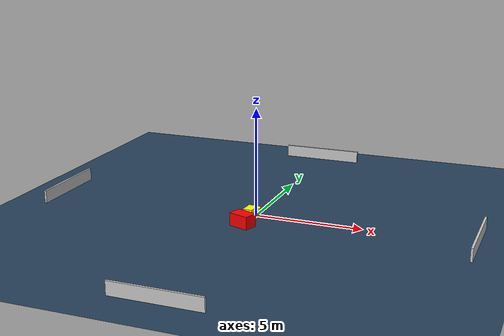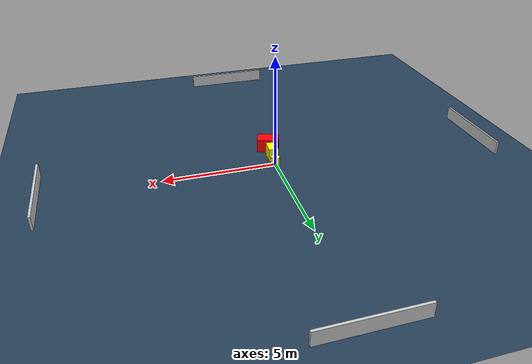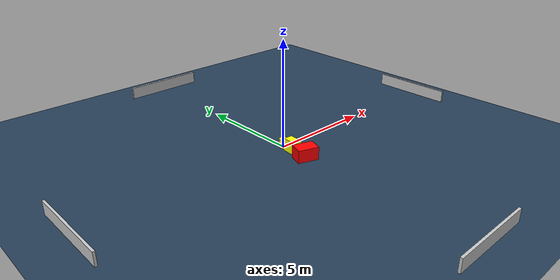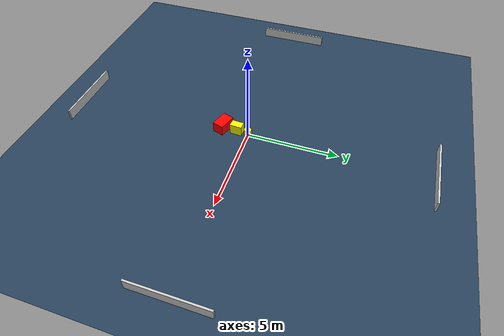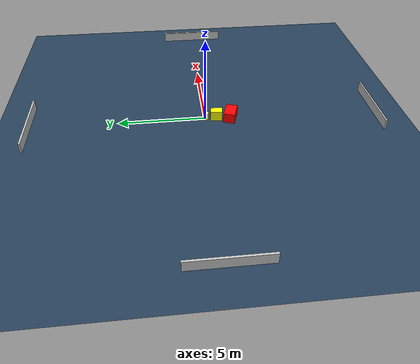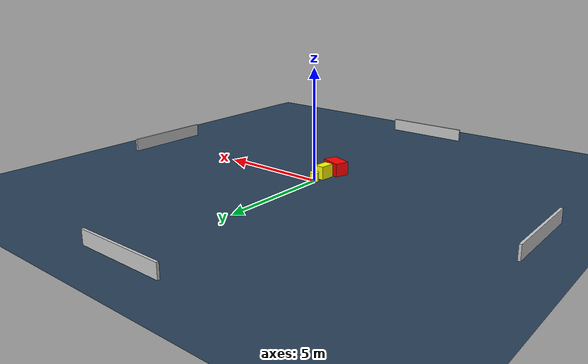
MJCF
<?xml version="1.0" ?>
<mujoco model="generated_environment">
  <option timestep="0.01" integrator="RK4" cone="elliptic"/>
  <default>
    <geom density="1"/>
  </default>
  <asset>
    <texture builtin="gradient" height="3072" name="skybox" rgb1="0.3 0.5 0.7" rgb2="0 0 0" type="skybox" width="512"/>
    <texture builtin="checker" height="300" name="groundplane" rgb1="0.2 0.3 0.4" rgb2="0.1 0.2 0.3" type="2d" width="300"/>
    <material name="groundplane" reflectance="0.2" texrepeat="5 5" texture="groundplane"/>
  </asset>
  <worldbody>
    <light dir="0 0 -1" directional="true" pos="0 0 1.5"/>
    <geom condim="3" friction="0.5 0.005 0.001" material="groundplane" name="floor" pos="0 0 0" size="0 0 0.05" type="plane"/>
    <body name="walls">
      <geom name="wall_1" condim="4" pos="-10.0 0.0 0.3" rgba="0.800000011920929 0.800000011920929 0.800000011920929 1.0" size="0.05 2.0 0.3" type="box"/>
      <geom name="wall_2" condim="4" pos="10.0 0.0 0.3" rgba="0.800000011920929 0.800000011920929 0.800000011920929 1.0" size="0.05 2.0 0.3" type="box"/>
      <geom name="wall_3" condim="4" pos="0.0 -10.0 0.3" rgba="0.800000011920929 0.800000011920929 0.800000011920929 1.0" size="2.0 0.05 0.3" type="box"/>
      <geom name="wall_4" condim="4" pos="0.0 10.0 0.3" rgba="0.800000011920929 0.800000011920929 0.800000011920929 1.0" size="2.0 0.05 0.3" type="box"/>
    </body>
    <body name="robot">
      <joint name="joint_x" type="slide" pos="0 0 0" axis="1 0 0"/>
      <joint name="joint_y" type="slide" pos="0 0 0" axis="0 1 0"/>
      <geom name="robot" type="cylinder" pos="0.0 0.0 0.2" size="0.2 0.2 0.0" mass="5.0" friction="1.0 0.005 0.0001" condim="4" rgba="1.0 1.0 0.0 1.0"/>
    </body>
    <body name="obstacle_1_movable">
      <geom name="obstacle_1_movable" condim="4" pos="-0.03926628046947974 -0.6457132535262747 0.3" euler="0 0 266.78779744459683" friction="0.0 0.005 0.001" rgba="1.0 1.0 0.0 1.0" size="0.33347885278786304 0.21437151063347087 0.3" type="box" mass="0.1"/>
      <joint type="free"/>
    </body>
    <body name="obstacle_2_static">
      <geom name="obstacle_2_static" condim="4" pos="-0.0838288421758565 -1.4697197147632899 0.3" euler="0 0 341.1220123412618" friction="0.0 0.005 0.001" rgba="1.0 0.0 0.0 1.0" size="0.48766640621148005 0.3250934643935117 0.3" type="box"/>
    </body>
  </worldbody>
  <actuator>
    <motor name="actuator_x" joint="joint_x" gear="1" ctrlrange="-1 1"/>
    <motor name="actuator_y" joint="joint_y" gear="1" ctrlrange="-1 1"/>
  </actuator>
</mujoco>
